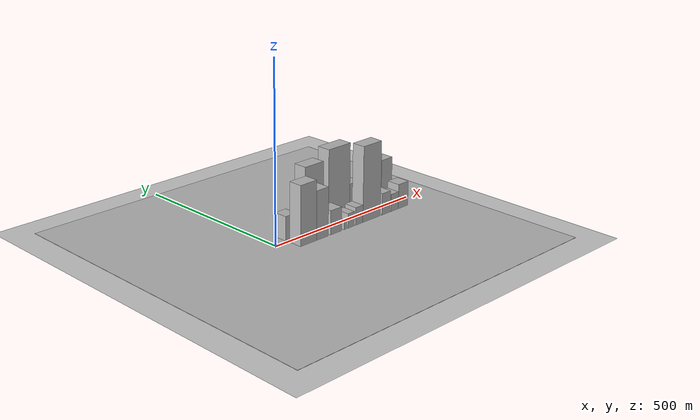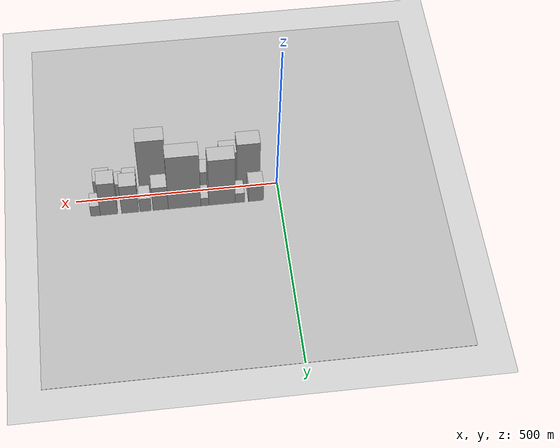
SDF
<?xml version="1.0" encoding="utf-8"?>

<sdf version="1.6">

   <world name="default">

      <gui fullscreen="0">

         <camera name="user_camera">

            <pose>-15 0 4.57585 0 0 0</pose>

            <view_controller>orbit</view_controller>

         </camera>

      </gui>

      <scene>

         <sky>

           <clouds>

             <speed>12</speed>

           </clouds>

         </sky>

         <ambient>0.4 0.4 0.4 1</ambient>

         <background>0.7 0.7 0.7 1</background>

         <shadows>1</shadows>

      </scene>

      <gravity>0 0 -9.8066</gravity>

      <magnetic_field>6e-06 2.3e-05 -4.2e-05</magnetic_field>

      <physics default="0" name="default_physics" type="ode">

         <ode>

            <solver>

               <type>quick</type>

               <iters>10</iters>

               <sor>1.0</sor>

               <use_dynamic_moi_rescaling>0</use_dynamic_moi_rescaling>

            </solver>

            <constraints>

               <cfm>0</cfm>

               <erp>0.2</erp>

               <contact_max_correcting_vel>100</contact_max_correcting_vel>

               <contact_surface_layer>0.001</contact_surface_layer>

            </constraints>

         </ode>

         <max_step_size>0.004</max_step_size>

         <real_time_factor>1</real_time_factor>

         <real_time_update_rate>250</real_time_update_rate>

      </physics>

      <light name="sun" type="directional">

         <cast_shadows>1</cast_shadows>

         <pose>0 0 10 0 0 0</pose>

         <diffuse>0.8 0.8 0.8 1</diffuse>

         <specular>0.2 0.2 0.2 1</specular>

         <attenuation>

            <range>1000</range>

            <constant>0.9</constant>

            <linear>0.01</linear>

            <quadratic>0.001</quadratic>

         </attenuation>

         <direction>-0.5 0.1 -0.9</direction>

      </light>

      <include>

         <name>ground_plane_1</name>

         <uri>model://HANNAS_ground_plane</uri>

         <pose>0 0 0  0 0 0</pose>

      </include>

      <include>

         <name>ground_plane_2</name>

         <uri>model://HANNAS_ground_plane</uri>

         <pose>100 0 0  0 0 0</pose>

      </include>

      <model name="building_1">

         <static>1</static>

         <pose frame="">58.6165 26.0000 0 0.000000 0.000000 1.570796</pose>

         <link name="link">

            <pose frame="">0 0 34.50 0 0 0</pose>

            <collision name="collision">

               <geometry>

                  <box>

                     <size>40.0000 37.2331 69.0000</size>

                  </box>

               </geometry>

               <max_contacts>10</max_contacts>

               <surface>

                  <contact>

                     <ode/>

                  </contact>

                  <bounce/>

                  <friction>

                     <torsional>

                        <ode/>

                     </torsional>

                     <ode/>

                  </friction>

               </surface>

            </collision>

            <visual name="visual">

               <cast_shadows>0</cast_shadows>

               <geometry>

                  <box>

                     <size>40.0000 37.2331 69.0000</size>

                  </box>

               </geometry>

               <material>

                  <script>

                     <uri>model://HANNAS_wall/materials/scripts</uri>

                     <uri>model://HANNAS_wall/materials/textures</uri>

                     <name>vrc/HANNAS_wall</name>

                  </script>

               </material>

            </visual>

            <self_collide>0</self_collide>

            <enable_wind>0</enable_wind>

            <kinematic>0</kinematic>

         </link>

      </model>

      <model name="building_2">

         <static>1</static>

         <pose frame="">98.4645 26.0000 0 0.000000 0.000000 1.570796</pose>

         <link name="link">

            <pose frame="">0 0 19.50 0 0 0</pose>

            <collision name="collision">

               <geometry>

                  <box>

                     <size>40.0000 22.4628 39.0000</size>

                  </box>

               </geometry>

               <max_contacts>10</max_contacts>

               <surface>

                  <contact>

                     <ode/>

                  </contact>

                  <bounce/>

                  <friction>

                     <torsional>

                        <ode/>

                     </torsional>

                     <ode/>

                  </friction>

               </surface>

            </collision>

            <visual name="visual">

               <cast_shadows>0</cast_shadows>

               <geometry>

                  <box>

                     <size>40.0000 22.4628 39.0000</size>

                  </box>

               </geometry>

               <material>

                  <script>

                     <uri>model://HANNAS_wall/materials/scripts</uri>

                     <uri>model://HANNAS_wall/materials/textures</uri>

                     <name>vrc/HANNAS_wall</name>

                  </script>

               </material>

            </visual>

            <self_collide>0</self_collide>

            <enable_wind>0</enable_wind>

            <kinematic>0</kinematic>

         </link>

      </model>

      <model name="building_3">

         <static>1</static>

         <pose frame="">142.8023 26.0000 0 0.000000 0.000000 1.570796</pose>

         <link name="link">

            <pose frame="">0 0 93.00 0 0 0</pose>

            <collision name="collision">

               <geometry>

                  <box>

                     <size>40.0000 66.2130 186.0000</size>

                  </box>

               </geometry>

               <max_contacts>10</max_contacts>

               <surface>

                  <contact>

                     <ode/>

                  </contact>

                  <bounce/>

                  <friction>

                     <torsional>

                        <ode/>

                     </torsional>

                     <ode/>

                  </friction>

               </surface>

            </collision>

            <visual name="visual">

               <cast_shadows>0</cast_shadows>

               <geometry>

                  <box>

                     <size>40.0000 66.2130 186.0000</size>

                  </box>

               </geometry>

               <material>

                  <script>

                     <uri>model://HANNAS_wall/materials/scripts</uri>

                     <uri>model://HANNAS_wall/materials/textures</uri>

                     <name>vrc/HANNAS_wall</name>

                  </script>

               </material>

            </visual>

            <self_collide>0</self_collide>

            <enable_wind>0</enable_wind>

            <kinematic>0</kinematic>

         </link>

      </model>

      <model name="building_4">

         <static>1</static>

         <pose frame="">185.6401 26.0000 0 0.000000 0.000000 1.570796</pose>

         <link name="link">

            <pose frame="">0 0 16.50 0 0 0</pose>

            <collision name="collision">

               <geometry>

                  <box>

                     <size>40.0000 19.4625 33.0000</size>

                  </box>

               </geometry>

               <max_contacts>10</max_contacts>

               <surface>

                  <contact>

                     <ode/>

                  </contact>

                  <bounce/>

                  <friction>

                     <torsional>

                        <ode/>

                     </torsional>

                     <ode/>

                  </friction>

               </surface>

            </collision>

            <visual name="visual">

               <cast_shadows>0</cast_shadows>

               <geometry>

                  <box>

                     <size>40.0000 19.4625 33.0000</size>

                  </box>

               </geometry>

               <material>

                  <script>

                     <uri>model://HANNAS_wall/materials/scripts</uri>

                     <uri>model://HANNAS_wall/materials/textures</uri>

                     <name>vrc/HANNAS_wall</name>

                  </script>

               </material>

            </visual>

            <self_collide>0</self_collide>

            <enable_wind>0</enable_wind>

            <kinematic>0</kinematic>

         </link>

      </model>

      <model name="building_5">

         <static>1</static>

         <pose frame="">235.6390 26.0000 0 0.000000 0.000000 1.570796</pose>

         <link name="link">

            <pose frame="">0 0 106.50 0 0 0</pose>

            <collision name="collision">

               <geometry>

                  <box>

                     <size>40.0000 80.5354 213.0000</size>

                  </box>

               </geometry>

               <max_contacts>10</max_contacts>

               <surface>

                  <contact>

                     <ode/>

                  </contact>

                  <bounce/>

                  <friction>

                     <torsional>

                        <ode/>

                     </torsional>

                     <ode/>

                  </friction>

               </surface>

            </collision>

            <visual name="visual">

               <cast_shadows>0</cast_shadows>

               <geometry>

                  <box>

                     <size>40.0000 80.5354 213.0000</size>

                  </box>

               </geometry>

               <material>

                  <script>

                     <uri>model://HANNAS_wall/materials/scripts</uri>

                     <uri>model://HANNAS_wall/materials/textures</uri>

                     <name>vrc/HANNAS_wall</name>

                  </script>

               </material>

            </visual>

            <self_collide>0</self_collide>

            <enable_wind>0</enable_wind>

            <kinematic>0</kinematic>

         </link>

      </model>

      <model name="building_6">

         <static>1</static>

         <pose frame="">294.8504 26.0000 0 0.000000 0.000000 1.570796</pose>

         <link name="link">

            <pose frame="">0 0 48.00 0 0 0</pose>

            <collision name="collision">

               <geometry>

                  <box>

                     <size>40.0000 37.8873 96.0000</size>

                  </box>

               </geometry>

               <max_contacts>10</max_contacts>

               <surface>

                  <contact>

                     <ode/>

                  </contact>

                  <bounce/>

                  <friction>

                     <torsional>

                        <ode/>

                     </torsional>

                     <ode/>

                  </friction>

               </surface>

            </collision>

            <visual name="visual">

               <cast_shadows>0</cast_shadows>

               <geometry>

                  <box>

                     <size>40.0000 37.8873 96.0000</size>

                  </box>

               </geometry>

               <material>

                  <script>

                     <uri>model://HANNAS_wall/materials/scripts</uri>

                     <uri>model://HANNAS_wall/materials/textures</uri>

                     <name>vrc/HANNAS_wall</name>

                  </script>

               </material>

            </visual>

            <self_collide>0</self_collide>

            <enable_wind>0</enable_wind>

            <kinematic>0</kinematic>

         </link>

      </model>

      <model name="building_7">

         <static>1</static>

         <pose frame="">331.8837 26.0000 0 0.000000 0.000000 1.570796</pose>

         <link name="link">

            <pose frame="">0 0 27.00 0 0 0</pose>

            <collision name="collision">

               <geometry>

                  <box>

                     <size>40.0000 28.1794 54.0000</size>

                  </box>

               </geometry>

               <max_contacts>10</max_contacts>

               <surface>

                  <contact>

                     <ode/>

                  </contact>

                  <bounce/>

                  <friction>

                     <torsional>

                        <ode/>

                     </torsional>

                     <ode/>

                  </friction>

               </surface>

            </collision>

            <visual name="visual">

               <cast_shadows>0</cast_shadows>

               <geometry>

                  <box>

                     <size>40.0000 28.1794 54.0000</size>

                  </box>

               </geometry>

               <material>

                  <script>

                     <uri>model://HANNAS_wall/materials/scripts</uri>

                     <uri>model://HANNAS_wall/materials/textures</uri>

                     <name>vrc/HANNAS_wall</name>

                  </script>

               </material>

            </visual>

            <self_collide>0</self_collide>

            <enable_wind>0</enable_wind>

            <kinematic>0</kinematic>

         </link>

      </model>

      <model name="building_8">

         <static>1</static>

         <pose frame="">369.8284 26.0000 0 0.000000 0.000000 1.570796</pose>

         <link name="link">

            <pose frame="">0 0 57.00 0 0 0</pose>

            <collision name="collision">

               <geometry>

                  <box>

                     <size>40.0000 41.7099 114.0000</size>

                  </box>

               </geometry>

               <max_contacts>10</max_contacts>

               <surface>

                  <contact>

                     <ode/>

                  </contact>

                  <bounce/>

                  <friction>

                     <torsional>

                        <ode/>

                     </torsional>

                     <ode/>

                  </friction>

               </surface>

            </collision>

            <visual name="visual">

               <cast_shadows>0</cast_shadows>

               <geometry>

                  <box>

                     <size>40.0000 41.7099 114.0000</size>

                  </box>

               </geometry>

               <material>

                  <script>

                     <uri>model://HANNAS_wall/materials/scripts</uri>

                     <uri>model://HANNAS_wall/materials/textures</uri>

                     <name>vrc/HANNAS_wall</name>

                  </script>

               </material>

            </visual>

            <self_collide>0</self_collide>

            <enable_wind>0</enable_wind>

            <kinematic>0</kinematic>

         </link>

      </model>

      <model name="building_9">

         <static>1</static>

         <pose frame="">421.9408 26.0000 0 0.000000 0.000000 1.570796</pose>

         <link name="link">

            <pose frame="">0 0 66.00 0 0 0</pose>

            <collision name="collision">

               <geometry>

                  <box>

                     <size>40.0000 42.5149 132.0000</size>

                  </box>

               </geometry>

               <max_contacts>10</max_contacts>

               <surface>

                  <contact>

                     <ode/>

                  </contact>

                  <bounce/>

                  <friction>

                     <torsional>

                        <ode/>

                     </torsional>

                     <ode/>

                  </friction>

               </surface>

            </collision>

            <visual name="visual">

               <cast_shadows>0</cast_shadows>

               <geometry>

                  <box>

                     <size>40.0000 42.5149 132.0000</size>

                  </box>

               </geometry>

               <material>

                  <script>

                     <uri>model://HANNAS_wall/materials/scripts</uri>

                     <uri>model://HANNAS_wall/materials/textures</uri>

                     <name>vrc/HANNAS_wall</name>

                  </script>

               </material>

            </visual>

            <self_collide>0</self_collide>

            <enable_wind>0</enable_wind>

            <kinematic>0</kinematic>

         </link>

      </model>

      <model name="building_10">

         <static>1</static>

         <pose frame="">454.7749 26.0000 0 0.000000 0.000000 1.570796</pose>

         <link name="link">

            <pose frame="">0 0 21.00 0 0 0</pose>

            <collision name="collision">

               <geometry>

                  <box>

                     <size>40.0000 23.1532 42.0000</size>

                  </box>

               </geometry>

               <max_contacts>10</max_contacts>

               <surface>

                  <contact>

                     <ode/>

                  </contact>

                  <bounce/>

                  <friction>

                     <torsional>

                        <ode/>

                     </torsional>

                     <ode/>

                  </friction>

               </surface>

            </collision>

            <visual name="visual">

               <cast_shadows>0</cast_shadows>

               <geometry>

                  <box>

                     <size>40.0000 23.1532 42.0000</size>

                  </box>

               </geometry>

               <material>

                  <script>

                     <uri>model://HANNAS_wall/materials/scripts</uri>

                     <uri>model://HANNAS_wall/materials/textures</uri>

                     <name>vrc/HANNAS_wall</name>

                  </script>

               </material>

            </visual>

            <self_collide>0</self_collide>

            <enable_wind>0</enable_wind>

            <kinematic>0</kinematic>

         </link>

      </model>

      <model name="building_11">

         <static>1</static>

         <pose frame="">71.6704 -26.0000 0 0.000000 0.000000 1.570796</pose>

         <link name="link">

            <pose frame="">0 0 84.00 0 0 0</pose>

            <collision name="collision">

               <geometry>

                  <box>

                     <size>40.0000 57.3407 168.0000</size>

                  </box>

               </geometry>

               <max_contacts>10</max_contacts>

               <surface>

                  <contact>

                     <ode/>

                  </contact>

                  <bounce/>

                  <friction>

                     <torsional>

                        <ode/>

                     </torsional>

                     <ode/>

                  </friction>

               </surface>

            </collision>

            <visual name="visual">

               <cast_shadows>0</cast_shadows>

               <geometry>

                  <box>

                     <size>40.0000 57.3407 168.0000</size>

                  </box>

               </geometry>

               <material>

                  <script>

                     <uri>model://HANNAS_wall/materials/scripts</uri>

                     <uri>model://HANNAS_wall/materials/textures</uri>

                     <name>vrc/HANNAS_wall</name>

                  </script>

               </material>

            </visual>

            <self_collide>0</self_collide>

            <enable_wind>0</enable_wind>

            <kinematic>0</kinematic>

         </link>

      </model>

      <model name="building_12">

         <static>1</static>

         <pose frame="">121.6230 -26.0000 0 0.000000 0.000000 1.570796</pose>

         <link name="link">

            <pose frame="">0 0 69.00 0 0 0</pose>

            <collision name="collision">

               <geometry>

                  <box>

                     <size>40.0000 42.5645 138.0000</size>

                  </box>

               </geometry>

               <max_contacts>10</max_contacts>

               <surface>

                  <contact>

                     <ode/>

                  </contact>

                  <bounce/>

                  <friction>

                     <torsional>

                        <ode/>

                     </torsional>

                     <ode/>

                  </friction>

               </surface>

            </collision>

            <visual name="visual">

               <cast_shadows>0</cast_shadows>

               <geometry>

                  <box>

                     <size>40.0000 42.5645 138.0000</size>

                  </box>

               </geometry>

               <material>

                  <script>

                     <uri>model://HANNAS_wall/materials/scripts</uri>

                     <uri>model://HANNAS_wall/materials/textures</uri>

                     <name>vrc/HANNAS_wall</name>

                  </script>

               </material>

            </visual>

            <self_collide>0</self_collide>

            <enable_wind>0</enable_wind>

            <kinematic>0</kinematic>

         </link>

      </model>

      <model name="building_13">

         <static>1</static>

         <pose frame="">172.0140 -26.0000 0 0.000000 0.000000 1.570796</pose>

         <link name="link">

            <pose frame="">0 0 34.50 0 0 0</pose>

            <collision name="collision">

               <geometry>

                  <box>

                     <size>40.0000 40.2175 69.0000</size>

                  </box>

               </geometry>

               <max_contacts>10</max_contacts>

               <surface>

                  <contact>

                     <ode/>

                  </contact>

                  <bounce/>

                  <friction>

                     <torsional>

                        <ode/>

                     </torsional>

                     <ode/>

                  </friction>

               </surface>

            </collision>

            <visual name="visual">

               <cast_shadows>0</cast_shadows>

               <geometry>

                  <box>

                     <size>40.0000 40.2175 69.0000</size>

                  </box>

               </geometry>

               <material>

                  <script>

                     <uri>model://HANNAS_wall/materials/scripts</uri>

                     <uri>model://HANNAS_wall/materials/textures</uri>

                     <name>vrc/HANNAS_wall</name>

                  </script>

               </material>

            </visual>

            <self_collide>0</self_collide>

            <enable_wind>0</enable_wind>

            <kinematic>0</kinematic>

         </link>

      </model>

      <model name="building_14">

         <static>1</static>

         <pose frame="">207.2514 -26.0000 0 0.000000 0.000000 1.570796</pose>

         <link name="link">

            <pose frame="">0 0 12.00 0 0 0</pose>

            <collision name="collision">

               <geometry>

                  <box>

                     <size>40.0000 10.2573 24.0000</size>

                  </box>

               </geometry>

               <max_contacts>10</max_contacts>

               <surface>

                  <contact>

                     <ode/>

                  </contact>

                  <bounce/>

                  <friction>

                     <torsional>

                        <ode/>

                     </torsional>

                     <ode/>

                  </friction>

               </surface>

            </collision>

            <visual name="visual">

               <cast_shadows>0</cast_shadows>

               <geometry>

                  <box>

                     <size>40.0000 10.2573 24.0000</size>

                  </box>

               </geometry>

               <material>

                  <script>

                     <uri>model://HANNAS_wall/materials/scripts</uri>

                     <uri>model://HANNAS_wall/materials/textures</uri>

                     <name>vrc/HANNAS_wall</name>

                  </script>

               </material>

            </visual>

            <self_collide>0</self_collide>

            <enable_wind>0</enable_wind>

            <kinematic>0</kinematic>

         </link>

      </model>

      <model name="building_15">

         <static>1</static>

         <pose frame="">228.6839 -26.0000 0 0.000000 0.000000 1.570796</pose>

         <link name="link">

            <pose frame="">0 0 21.00 0 0 0</pose>

            <collision name="collision">

               <geometry>

                  <box>

                     <size>40.0000 24.6078 42.0000</size>

                  </box>

               </geometry>

               <max_contacts>10</max_contacts>

               <surface>

                  <contact>

                     <ode/>

                  </contact>

                  <bounce/>

                  <friction>

                     <torsional>

                        <ode/>

                     </torsional>

                     <ode/>

                  </friction>

               </surface>

            </collision>

            <visual name="visual">

               <cast_shadows>0</cast_shadows>

               <geometry>

                  <box>

                     <size>40.0000 24.6078 42.0000</size>

                  </box>

               </geometry>

               <material>

                  <script>

                     <uri>model://HANNAS_wall/materials/scripts</uri>

                     <uri>model://HANNAS_wall/materials/textures</uri>

                     <name>vrc/HANNAS_wall</name>

                  </script>

               </material>

            </visual>

            <self_collide>0</self_collide>

            <enable_wind>0</enable_wind>

            <kinematic>0</kinematic>

         </link>

      </model>

      <model name="building_16">

         <static>1</static>

         <pose frame="">259.6617 -26.0000 0 0.000000 0.000000 1.570796</pose>

         <link name="link">

            <pose frame="">0 0 25.50 0 0 0</pose>

            <collision name="collision">

               <geometry>

                  <box>

                     <size>40.0000 27.3479 51.0000</size>

                  </box>

               </geometry>

               <max_contacts>10</max_contacts>

               <surface>

                  <contact>

                     <ode/>

                  </contact>

                  <bounce/>

                  <friction>

                     <torsional>

                        <ode/>

                     </torsional>

                     <ode/>

                  </friction>

               </surface>

            </collision>

            <visual name="visual">

               <cast_shadows>0</cast_shadows>

               <geometry>

                  <box>

                     <size>40.0000 27.3479 51.0000</size>

                  </box>

               </geometry>

               <material>

                  <script>

                     <uri>model://HANNAS_wall/materials/scripts</uri>

                     <uri>model://HANNAS_wall/materials/textures</uri>

                     <name>vrc/HANNAS_wall</name>

                  </script>

               </material>

            </visual>

            <self_collide>0</self_collide>

            <enable_wind>0</enable_wind>

            <kinematic>0</kinematic>

         </link>

      </model>

      <model name="building_17">

         <static>1</static>

         <pose frame="">307.6562 -26.0000 0 0.000000 0.000000 1.570796</pose>

         <link name="link">

            <pose frame="">0 0 108.00 0 0 0</pose>

            <collision name="collision">

               <geometry>

                  <box>

                     <size>40.0000 68.6410 216.0000</size>

                  </box>

               </geometry>

               <max_contacts>10</max_contacts>

               <surface>

                  <contact>

                     <ode/>

                  </contact>

                  <bounce/>

                  <friction>

                     <torsional>

                        <ode/>

                     </torsional>

                     <ode/>

                  </friction>

               </surface>

            </collision>

            <visual name="visual">

               <cast_shadows>0</cast_shadows>

               <geometry>

                  <box>

                     <size>40.0000 68.6410 216.0000</size>

                  </box>

               </geometry>

               <material>

                  <script>

                     <uri>model://HANNAS_wall/materials/scripts</uri>

                     <uri>model://HANNAS_wall/materials/textures</uri>

                     <name>vrc/HANNAS_wall</name>

                  </script>

               </material>

            </visual>

            <self_collide>0</self_collide>

            <enable_wind>0</enable_wind>

            <kinematic>0</kinematic>

         </link>

      </model>

      <model name="building_18">

         <static>1</static>

         <pose frame="">365.6419 -26.0000 0 0.000000 0.000000 1.570796</pose>

         <link name="link">

            <pose frame="">0 0 31.50 0 0 0</pose>

            <collision name="collision">

               <geometry>

                  <box>

                     <size>40.0000 33.3304 63.0000</size>

                  </box>

               </geometry>

               <max_contacts>10</max_contacts>

               <surface>

                  <contact>

                     <ode/>

                  </contact>

                  <bounce/>

                  <friction>

                     <torsional>

                        <ode/>

                     </torsional>

                     <ode/>

                  </friction>

               </surface>

            </collision>

            <visual name="visual">

               <cast_shadows>0</cast_shadows>

               <geometry>

                  <box>

                     <size>40.0000 33.3304 63.0000</size>

                  </box>

               </geometry>

               <material>

                  <script>

                     <uri>model://HANNAS_wall/materials/scripts</uri>

                     <uri>model://HANNAS_wall/materials/textures</uri>

                     <name>vrc/HANNAS_wall</name>

                  </script>

               </material>

            </visual>

            <self_collide>0</self_collide>

            <enable_wind>0</enable_wind>

            <kinematic>0</kinematic>

         </link>

      </model>

      <model name="building_19">

         <static>1</static>

         <pose frame="">399.9602 -26.0000 0 0.000000 0.000000 1.570796</pose>

         <link name="link">

            <pose frame="">0 0 25.50 0 0 0</pose>

            <collision name="collision">

               <geometry>

                  <box>

                     <size>40.0000 29.3062 51.0000</size>

                  </box>

               </geometry>

               <max_contacts>10</max_contacts>

               <surface>

                  <contact>

                     <ode/>

                  </contact>

                  <bounce/>

                  <friction>

                     <torsional>

                        <ode/>

                     </torsional>

                     <ode/>

                  </friction>

               </surface>

            </collision>

            <visual name="visual">

               <cast_shadows>0</cast_shadows>

               <geometry>

                  <box>

                     <size>40.0000 29.3062 51.0000</size>

                  </box>

               </geometry>

               <material>

                  <script>

                     <uri>model://HANNAS_wall/materials/scripts</uri>

                     <uri>model://HANNAS_wall/materials/textures</uri>

                     <name>vrc/HANNAS_wall</name>

                  </script>

               </material>

            </visual>

            <self_collide>0</self_collide>

            <enable_wind>0</enable_wind>

            <kinematic>0</kinematic>

         </link>

      </model>

      <model name="building_20">

         <static>1</static>

         <pose frame="">434.3916 -26.0000 0 0.000000 0.000000 1.570796</pose>

         <link name="link">

            <pose frame="">0 0 36.00 0 0 0</pose>

            <collision name="collision">

               <geometry>

                  <box>

                     <size>40.0000 39.5566 72.0000</size>

                  </box>

               </geometry>

               <max_contacts>10</max_contacts>

               <surface>

                  <contact>

                     <ode/>

                  </contact>

                  <bounce/>

                  <friction>

                     <torsional>

                        <ode/>

                     </torsional>

                     <ode/>

                  </friction>

               </surface>

            </collision>

            <visual name="visual">

               <cast_shadows>0</cast_shadows>

               <geometry>

                  <box>

                     <size>40.0000 39.5566 72.0000</size>

                  </box>

               </geometry>

               <material>

                  <script>

                     <uri>model://HANNAS_wall/materials/scripts</uri>

                     <uri>model://HANNAS_wall/materials/textures</uri>

                     <name>vrc/HANNAS_wall</name>

                  </script>

               </material>

            </visual>

            <self_collide>0</self_collide>

            <enable_wind>0</enable_wind>

            <kinematic>0</kinematic>

         </link>

      </model>

   </world>

</sdf>

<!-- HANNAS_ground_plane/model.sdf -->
<sdf version="1.4">
<model name="HANNAS_ground_plane">
  <static>true</static>
    <link name="link">
      <collision name="collision">
        <geometry>
          <plane>
            <normal>0 0 1</normal>
            <size>1000 1000</size>
          </plane>
        </geometry>
        <surface>
          <friction>
            <ode>
              <mu>100</mu>
              <mu2>50</mu2>
            </ode>
          </friction>
        </surface>
      </collision>
      <visual name="visual">
        <cast_shadows>false</cast_shadows>
        <geometry>
          <plane>
            <normal>0 0 1</normal>
            <size>1000 1000</size>
          </plane>
        </geometry>
        <material>
          <script>
            <uri>model://HANNAS_ground_plane/materials/scripts/HANNAS_ground_plane.material</uri>
	    <uri>model://HANNAS_ground_plane/materials/textures</uri>
            <name>HANNASGroundPlane/Image</name>
          </script>
        </material>
      </visual>
    </link>
  </model>
</sdf>
